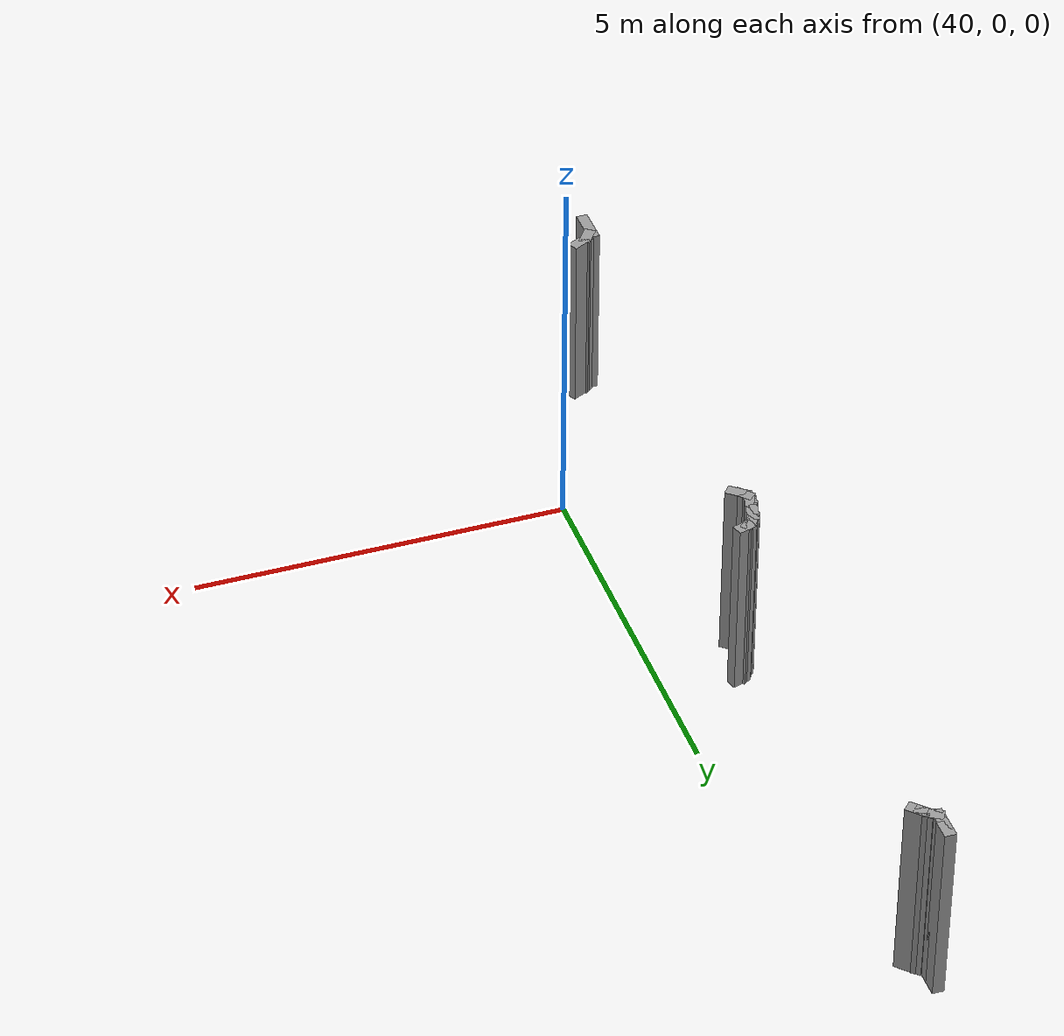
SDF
<sdf version="1.6">
 <model name="draft3">
  <pose>34.2026 -2.81154 0 0 -0 0</pose>
  <link name="Wall_375">
   <collision name="Wall_375_Collision">
    <geometry><box><size>0.25 0.15 2.5</size></box></geometry>
    <pose>0 0 1.25 0 -0 0</pose>
   </collision>
   <visual name="Wall_375_Visual">
    <pose>0 0 1.25 0 -0 0</pose>
    <geometry><box><size>0.25 0.15 2.5</size></box></geometry>
    <material>
     <script><uri>file://media/materials/scripts/gazebo.material</uri><name>Gazebo/Grey</name></script>
     <ambient>1 1 1 1</ambient>
    </material>
   </visual>
   <pose>4.82842 6.70268 0 0 0 -2.87979</pose>
  </link>
  <link name="Wall_376">
   <collision name="Wall_376_Collision">
    <geometry><box><size>0.25 0.15 2.5</size></box></geometry>
    <pose>0 0 1.25 0 -0 0</pose>
   </collision>
   <visual name="Wall_376_Visual">
    <pose>0 0 1.25 0 -0 0</pose>
    <geometry><box><size>0.25 0.15 2.5</size></box></geometry>
    <material>
     <script><uri>file://media/materials/scripts/gazebo.material</uri><name>Gazebo/Grey</name></script>
     <ambient>1 1 1 1</ambient>
    </material>
   </visual>
   <pose>4.74477 6.65438 0 0 0 -2.35619</pose>
  </link>
  <link name="Wall_377">
   <collision name="Wall_377_Collision">
    <geometry><box><size>0.25 0.15 2.5</size></box></geometry>
    <pose>0 0 1.25 0 -0 0</pose>
   </collision>
   <visual name="Wall_377_Visual">
    <pose>0 0 1.25 0 -0 0</pose>
    <geometry><box><size>0.25 0.15 2.5</size></box></geometry>
    <material>
     <script><uri>file://media/materials/scripts/gazebo.material</uri><name>Gazebo/Grey</name></script>
     <ambient>1 1 1 1</ambient>
    </material>
   </visual>
   <pose>4.68441 6.57573 0 0 0 -2.0944</pose>
  </link>
  <link name="Wall_378">
   <collision name="Wall_378_Collision">
    <geometry><box><size>0.25 0.15 2.5</size></box></geometry>
    <pose>0 0 1.25 0 -0 0</pose>
   </collision>
   <visual name="Wall_378_Visual">
    <pose>0 0 1.25 0 -0 0</pose>
    <geometry><box><size>0.25 0.15 2.5</size></box></geometry>
    <material>
     <script><uri>file://media/materials/scripts/gazebo.material</uri><name>Gazebo/Grey</name></script>
     <ambient>1 1 1 1</ambient>
    </material>
   </visual>
   <pose>4.64647 6.48413 0 0 0 -1.8326</pose>
  </link>
  <link name="Wall_379">
   <collision name="Wall_379_Collision">
    <geometry><box><size>0.25 0.15 2.5</size></box></geometry>
    <pose>0 0 1.25 0 -0 0</pose>
   </collision>
   <visual name="Wall_379_Visual">
    <pose>0 0 1.25 0 -0 0</pose>
    <geometry><box><size>0.25 0.15 2.5</size></box></geometry>
    <material>
     <script><uri>file://media/materials/scripts/gazebo.material</uri><name>Gazebo/Grey</name></script>
     <ambient>1 1 1 1</ambient>
    </material>
   </visual>
   <pose>4.62059 6.38753 0 0 0 -1.8326</pose>
  </link>
  <link name="Wall_380">
   <collision name="Wall_380_Collision">
    <geometry><box><size>0.25 0.15 2.5</size></box></geometry>
    <pose>0 0 1.25 0 -0 0</pose>
   </collision>
   <visual name="Wall_380_Visual">
    <pose>0 0 1.25 0 -0 0</pose>
    <geometry><box><size>0.25 0.15 2.5</size></box></geometry>
    <material>
     <script><uri>file://media/materials/scripts/gazebo.material</uri><name>Gazebo/Grey</name></script>
     <ambient>1 1 1 1</ambient>
    </material>
   </visual>
   <pose>4.5947 6.29094 0 0 0 -1.8326</pose>
  </link>
  <link name="Wall_381">
   <collision name="Wall_381_Collision">
    <geometry><box><size>0.25 0.15 2.5</size></box></geometry>
    <pose>0 0 1.25 0 -0 0</pose>
   </collision>
   <visual name="Wall_381_Visual">
    <pose>0 0 1.25 0 -0 0</pose>
    <geometry><box><size>0.25 0.15 2.5</size></box></geometry>
    <material>
     <script><uri>file://media/materials/scripts/gazebo.material</uri><name>Gazebo/Grey</name></script>
     <ambient>1 1 1 1</ambient>
    </material>
   </visual>
   <pose>4.58176 6.19265 0 0 0 -1.5708</pose>
  </link>
  <link name="Wall_382">
   <collision name="Wall_382_Collision">
    <geometry><box><size>0.257043 0.15 2.5</size></box></geometry>
    <pose>0 0 1.25 0 -0 0</pose>
   </collision>
   <visual name="Wall_382_Visual">
    <pose>0 0 1.25 0 -0 0</pose>
    <geometry><box><size>0.257043 0.15 2.5</size></box></geometry>
    <material>
     <script><uri>file://media/materials/scripts/gazebo.material</uri><name>Gazebo/Grey</name></script>
     <ambient>1 1 1 1</ambient>
    </material>
   </visual>
   <pose>4.61752 6.10282 0 0 0 -0.839076</pose>
  </link>
  <link name="Wall_383">
   <collision name="Wall_383_Collision">
    <geometry><box><size>0.247384 0.15 2.5</size></box></geometry>
    <pose>0 0 1.25 0 -0 0</pose>
   </collision>
   <visual name="Wall_383_Visual">
    <pose>0 0 1.25 0 -0 0</pose>
    <geometry><box><size>0.247384 0.15 2.5</size></box></geometry>
    <material>
     <script><uri>file://media/materials/scripts/gazebo.material</uri><name>Gazebo/Grey</name></script>
     <ambient>1 1 1 1</ambient>
    </material>
   </visual>
   <pose>4.69131 6.03259 0 0 0 -0.674741</pose>
  </link>
  <link name="Wall_384">
   <collision name="Wall_384_Collision">
    <geometry><box><size>0.247384 0.15 2.5</size></box></geometry>
    <pose>0 0 1.25 0 -0 0</pose>
   </collision>
   <visual name="Wall_384_Visual">
    <pose>0 0 1.25 0 -0 0</pose>
    <geometry><box><size>0.247384 0.15 2.5</size></box></geometry>
    <material>
     <script><uri>file://media/materials/scripts/gazebo.material</uri><name>Gazebo/Grey</name></script>
     <ambient>1 1 1 1</ambient>
    </material>
   </visual>
   <pose>4.69131 6.03259 0 0 -0 2.46685</pose>
  </link>
  <link name="Wall_421">
   <collision name="Wall_421_Collision">
    <geometry><box><size>0.25 0.15 2.5</size></box></geometry>
    <pose>0 0 1.25 0 -0 0</pose>
   </collision>
   <visual name="Wall_421_Visual">
    <pose>0 0 1.25 0 -0 0</pose>
    <geometry><box><size>0.25 0.15 2.5</size></box></geometry>
    <material>
     <script><uri>file://media/materials/scripts/gazebo.material</uri><name>Gazebo/Grey</name></script>
     <ambient>1 1 1 1</ambient>
    </material>
   </visual>
   <pose>4.5744 12.4496 0 0 0 -1.5708</pose>
  </link>
  <link name="Wall_422">
   <collision name="Wall_422_Collision">
    <geometry><box><size>0.25 0.15 2.5</size></box></geometry>
    <pose>0 0 1.25 0 -0 0</pose>
   </collision>
   <visual name="Wall_422_Visual">
    <pose>0 0 1.25 0 -0 0</pose>
    <geometry><box><size>0.25 0.15 2.5</size></box></geometry>
    <material>
     <script><uri>file://media/materials/scripts/gazebo.material</uri><name>Gazebo/Grey</name></script>
     <ambient>1 1 1 1</ambient>
    </material>
   </visual>
   <pose>4.5744 12.3496 0 0 0 -1.5708</pose>
  </link>
  <link name="Wall_423">
   <collision name="Wall_423_Collision">
    <geometry><box><size>0.25 0.15 2.5</size></box></geometry>
    <pose>0 0 1.25 0 -0 0</pose>
   </collision>
   <visual name="Wall_423_Visual">
    <pose>0 0 1.25 0 -0 0</pose>
    <geometry><box><size>0.25 0.15 2.5</size></box></geometry>
    <material>
     <script><uri>file://media/materials/scripts/gazebo.material</uri><name>Gazebo/Grey</name></script>
     <ambient>1 1 1 1</ambient>
    </material>
   </visual>
   <pose>4.5744 12.2496 0 0 0 -1.5708</pose>
  </link>
  <link name="Wall_424">
   <collision name="Wall_424_Collision">
    <geometry><box><size>0.25 0.15 2.5</size></box></geometry>
    <pose>0 0 1.25 0 -0 0</pose>
   </collision>
   <visual name="Wall_424_Visual">
    <pose>0 0 1.25 0 -0 0</pose>
    <geometry><box><size>0.25 0.15 2.5</size></box></geometry>
    <material>
     <script><uri>file://media/materials/scripts/gazebo.material</uri><name>Gazebo/Grey</name></script>
     <ambient>1 1 1 1</ambient>
    </material>
   </visual>
   <pose>4.6177 12.1746 0 0 0 -0.523599</pose>
  </link>
  <link name="Wall_425">
   <collision name="Wall_425_Collision">
    <geometry><box><size>0.25 0.15 2.5</size></box></geometry>
    <pose>0 0 1.25 0 -0 0</pose>
   </collision>
   <visual name="Wall_425_Visual">
    <pose>0 0 1.25 0 -0 0</pose>
    <geometry><box><size>0.25 0.15 2.5</size></box></geometry>
    <material>
     <script><uri>file://media/materials/scripts/gazebo.material</uri><name>Gazebo/Grey</name></script>
     <ambient>1 1 1 1</ambient>
    </material>
   </visual>
   <pose>4.69636 12.1143 0 0 0 -0.785398</pose>
  </link>
  <link name="Wall_426">
   <collision name="Wall_426_Collision">
    <geometry><box><size>0.25 0.15 2.5</size></box></geometry>
    <pose>0 0 1.25 0 -0 0</pose>
   </collision>
   <visual name="Wall_426_Visual">
    <pose>0 0 1.25 0 -0 0</pose>
    <geometry><box><size>0.25 0.15 2.5</size></box></geometry>
    <material>
     <script><uri>file://media/materials/scripts/gazebo.material</uri><name>Gazebo/Grey</name></script>
     <ambient>1 1 1 1</ambient>
    </material>
   </visual>
   <pose>4.76707 12.0436 0 0 0 -0.785398</pose>
  </link>
  <link name="Wall_488">
   <collision name="Wall_488_Collision">
    <geometry><box><size>0.5 0.15 2.5</size></box></geometry>
    <pose>0 0 1.25 0 -0 0</pose>
   </collision>
   <visual name="Wall_488_Visual">
    <pose>0 0 1.25 0 -0 0</pose>
    <geometry><box><size>0.5 0.15 2.5</size></box></geometry>
    <material>
     <script><uri>file://media/materials/scripts/gazebo.material</uri><name>Gazebo/Grey</name></script>
     <ambient>1 1 1 1</ambient>
    </material>
   </visual>
   <pose>4.57848 0.208754 0 0 0 -1.5708</pose>
  </link>
  <link name="Wall_504">
   <collision name="Wall_504_Collision">
    <geometry><box><size>0.327432 0.15 2.5</size></box></geometry>
    <pose>0 0 1.25 0 -0 0</pose>
   </collision>
   <visual name="Wall_504_Visual">
    <pose>0 0 1.25 0 -0 0</pose>
    <geometry><box><size>0.327432 0.15 2.5</size></box></geometry>
    <material>
     <script><uri>file://media/materials/scripts/gazebo.material</uri><name>Gazebo/Grey</name></script>
     <ambient>1 1 1 1</ambient>
    </material>
   </visual>
   <pose>4.77686 0.502779 0 0 0 -2.67794</pose>
  </link>
  <link name="Wall_505">
   <collision name="Wall_505_Collision">
    <geometry><box><size>0.28225 0.15 2.5</size></box></geometry>
    <pose>0 0 1.25 0 -0 0</pose>
   </collision>
   <visual name="Wall_505_Visual">
    <pose>0 0 1.25 0 -0 0</pose>
    <geometry><box><size>0.28225 0.15 2.5</size></box></geometry>
    <material>
     <script><uri>file://media/materials/scripts/gazebo.material</uri><name>Gazebo/Grey</name></script>
     <ambient>1 1 1 1</ambient>
    </material>
   </visual>
   <pose>4.65784 0.410203 0 0 0 -2.2143</pose>
  </link>
  <static>1</static>
 </model>
</sdf>
